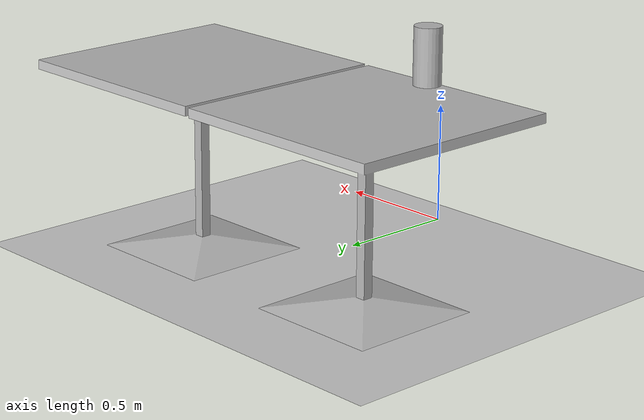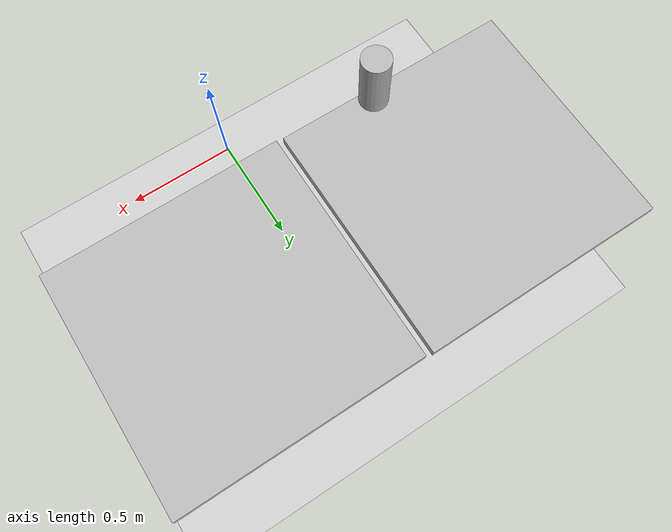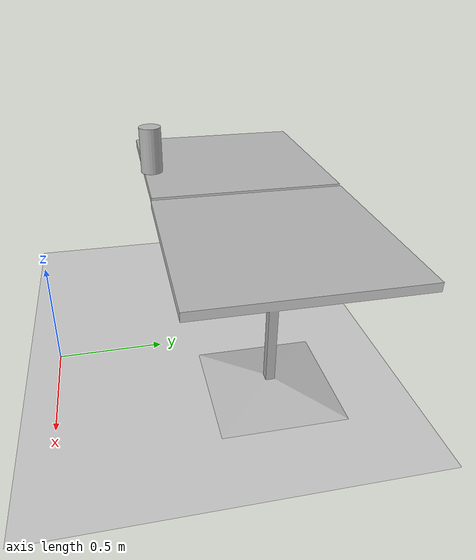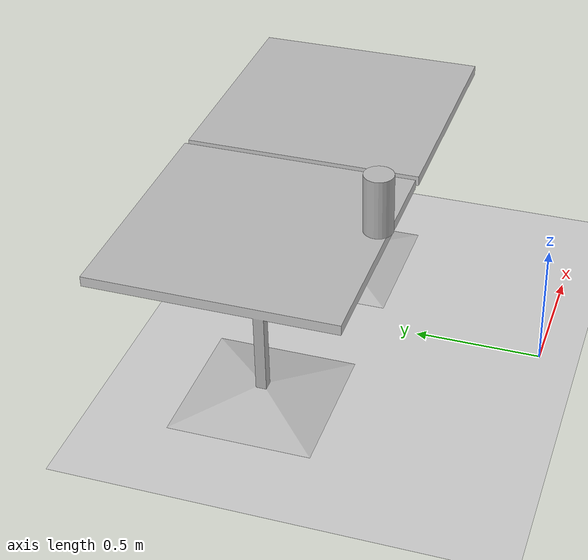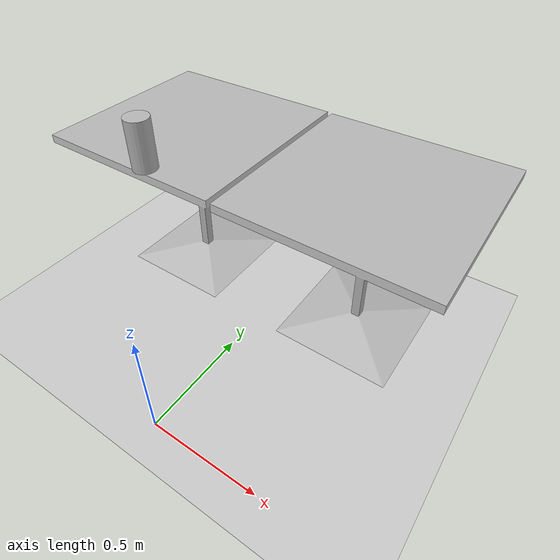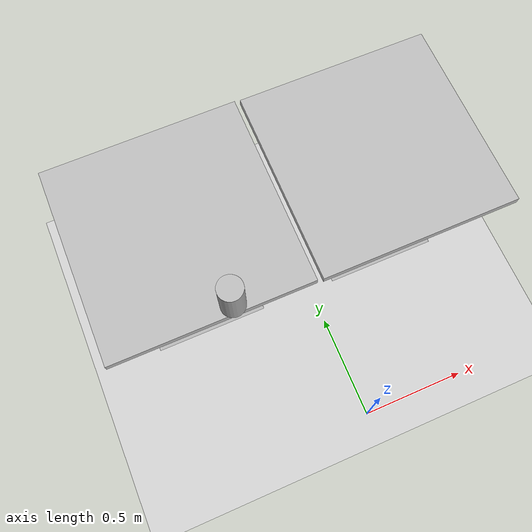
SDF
<sdf version="1.7">
 <world name="default">
  <model name="ground_plane">
   <static>1</static>
   <link name="link">
    <collision name="collision">
     <geometry><plane><normal>0 0 1</normal><size>100 100</size></plane></geometry>
     <surface><friction><ode><mu>100</mu><mu2>50</mu2></ode></friction></surface>
    </collision>
    <visual name="visual">
     <cast_shadows>0</cast_shadows>
     <geometry><plane><normal>0 0 1</normal><size>100 100</size></plane></geometry>
     <material>
      <script><uri>file://media/materials/scripts/gazebo.material</uri><name>Gazebo/Grey</name></script>
     </material>
    </visual>
   </link>
  </model>
  <light name="sun" type="directional">
   <pose>0 0 10 0 -0 0</pose>
   <diffuse>0.8 0.8 0.8 1</diffuse>
   <specular>0.2 0.2 0.2 1</specular>
   <attenuation>
    <range>1000</range>
    <constant>0.9</constant>
    <linear>0.01</linear>
    <quadratic>0.001</quadratic>
   </attenuation>
   <direction>-0.5 0.1 -0.9</direction>
   <spot><inner_angle>0</inner_angle><outer_angle>0</outer_angle><falloff>0</falloff></spot>
  </light>
  <scene><shadows>0</shadows><ambient>0.4 0.4 0.4 1</ambient><background>0.7 0.7 0.7 1</background></scene>
  <physics type="ode">
   <real_time_update_rate>1000</real_time_update_rate>
   <max_step_size>0.001</max_step_size>
   <real_time_factor>1</real_time_factor>
   <ode>
    <solver>
     <type>quick</type>
     <iters>150</iters>
     <precon_iters>0</precon_iters>
     <sor>1.4</sor>
     <use_dynamic_moi_rescaling>1</use_dynamic_moi_rescaling>
    </solver>
    <constraints>
     <cfm>1e-05</cfm>
     <erp>0.2</erp>
     <contact_max_correcting_vel>2000</contact_max_correcting_vel>
     <contact_surface_layer>0.01</contact_surface_layer>
    </constraints>
   </ode>
  </physics>
  <gravity>0 0 -9.8</gravity>
  <magnetic_field>6e-06 2.3e-05 -4.2e-05</magnetic_field>
  <atmosphere type="adiabatic"/>
  <spherical_coordinates>
   <surface_model>EARTH_WGS84</surface_model>
   <latitude_deg>0</latitude_deg>
   <longitude_deg>0</longitude_deg>
   <elevation>0</elevation>
   <heading_deg>0</heading_deg>
  </spherical_coordinates>
  <model name="cafe_table">
   <static>1</static>
   <link name="link">
    <collision name="surface">
     <pose>0 0 0.755 0 -0 0</pose>
     <geometry><box><size>0.913 0.913 0.04</size></box></geometry>
    </collision>
    <collision name="column">
     <pose>0 0 0.37 0 -0 0</pose>
     <geometry><box><size>0.042 0.042 0.74</size></box></geometry>
    </collision>
    <collision name="base">
     <pose>0 0 0.02 0 -0 0</pose>
     <geometry><box><size>0.56 0.56 0.04</size></box></geometry>
    </collision>
    <visual name="visual">
     <geometry><mesh><uri>model://cafe_table/meshes/cafe_table.dae</uri></mesh></geometry>
    </visual>
   </link>
   <pose>-0.535129 0.961111 0 0 -0 0</pose>
  </model>
  <model name="cafe_table_0">
   <static>1</static>
   <link name="link">
    <collision name="surface">
     <pose>0 0 0.755 0 -0 0</pose>
     <geometry><box><size>0.913 0.913 0.04</size></box></geometry>
    </collision>
    <collision name="column">
     <pose>0 0 0.37 0 -0 0</pose>
     <geometry><box><size>0.042 0.042 0.74</size></box></geometry>
    </collision>
    <collision name="base">
     <pose>0 0 0.02 0 -0 0</pose>
     <geometry><box><size>0.56 0.56 0.04</size></box></geometry>
    </collision>
    <visual name="visual">
     <geometry><mesh><uri>model://cafe_table/meshes/cafe_table.dae</uri></mesh></geometry>
    </visual>
   </link>
   <pose>0.40426 0.955908 0 0 -0 0</pose>
  </model>
  <model name="beer">
   <link name="link">
    <pose>0 0 0.115 0 -0 0</pose>
    <inertial>
     <mass>0.01</mass>
     <inertia><ixx>0.00058</ixx><ixy>0</ixy><ixz>0</ixz><iyy>0.00058</iyy><iyz>0</iyz><izz>0.00019</izz></inertia>
    </inertial>
    <collision name="collision">
     <geometry><cylinder><radius>0.055</radius><length>0.23</length></cylinder></geometry>
    </collision>
    <visual name="visual">
     <geometry><cylinder><radius>0.055</radius><length>0.23</length></cylinder></geometry>
     <material>
      <script>
       <uri>model://beer/materials/scripts</uri>
       <uri>model://beer/materials/textures</uri>
       <name>Beer/Diffuse</name>
      </script>
     </material>
    </visual>
   </link>
   <pose>-0.434677 0.543033 0.775 7e-06 -2e-06 1.2e-05</pose>
  </model>
 </world>
</sdf>
